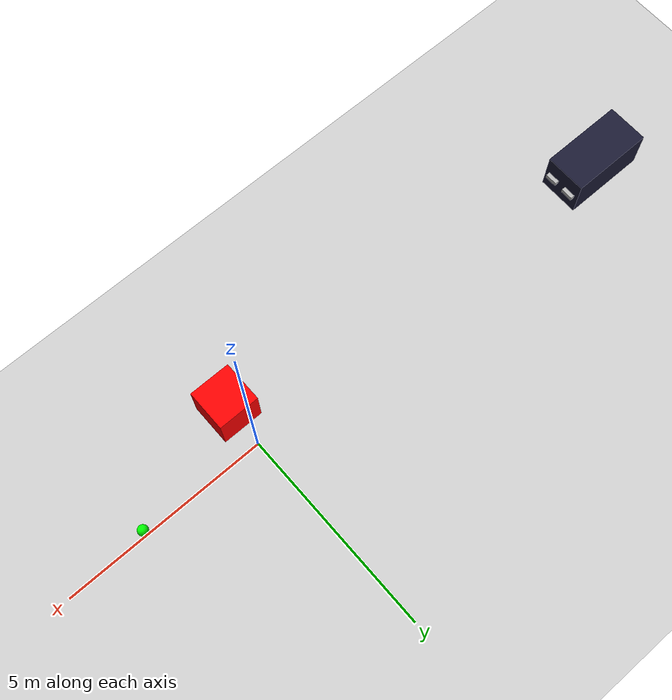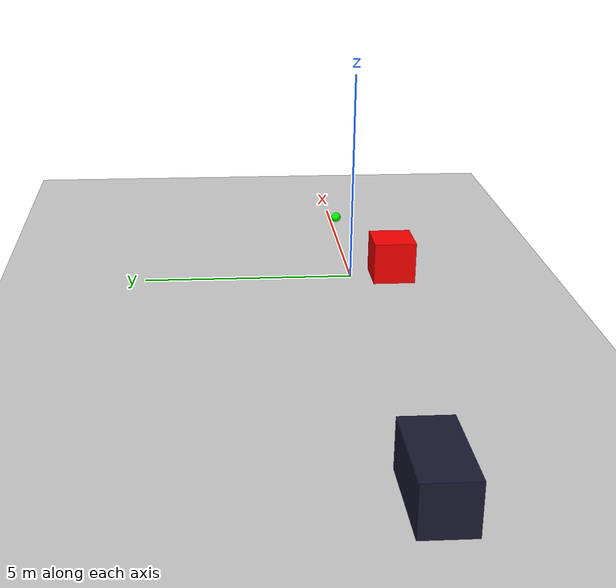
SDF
<sdf version="1.7">
 <world name="camera_world">
  <physics name="1ms" type="ignored">
   <max_step_size>0.001</max_step_size>
   <real_time_factor>1.0</real_time_factor>
  </physics>
  <plugin filename="gz-sim-physics-system" name="gz::sim::systems::Physics"/>
  <plugin filename="gz-sim-sensors-system" name="gz::sim::systems::Sensors">
   <render_engine>ogre2</render_engine>
  </plugin>
  <plugin filename="gz-sim-user-commands-system" name="gz::sim::systems::UserCommands"/>
  <plugin filename="gz-sim-scene-broadcaster-system" name="gz::sim::systems::SceneBroadcaster"/>
  <scene><ambient>1.0 1.0 1.0</ambient><background>0.8 0.8 0.8</background><grid>true</grid></scene>
  <light type="directional" name="sun">
   <pose>0 0 10 0 0 0</pose>
   <diffuse>0.8 0.8 0.8 1</diffuse>
   <specular>0.8 0.8 0.8 1</specular>
   <attenuation>
    <range>1000</range>
    <constant>0.9</constant>
    <linear>0.01</linear>
    <quadratic>0.001</quadratic>
   </attenuation>
   <direction>-0.5 0.1 -0.9</direction>
  </light>
  <model name="ground_plane">
   <static>true</static>
   <link name="link">
    <collision name="collision">
     <geometry><plane><normal>0 0 1</normal><size>100 100</size></plane></geometry>
    </collision>
    <visual name="visual">
     <geometry><plane><normal>0 0 1</normal><size>100 100</size></plane></geometry>
     <material>
      <ambient>0.8 0.8 0.8 1</ambient>
      <diffuse>0.8 0.8 0.8 1</diffuse>
      <specular>0.8 0.8 0.8 1</specular>
     </material>
    </visual>
   </link>
  </model>
  <model name="cube">
   <pose>0 -1 0.5 0 0 0</pose>
   <link name="box_link">
    <inertial>
     <inertia><ixx>1</ixx><ixy>0</ixy><ixz>0</ixz><iyy>1</iyy><iyz>0</iyz><izz>1</izz></inertia>
     <mass>1.0</mass>
    </inertial>
    <collision name="box_collision"><geometry><box><size>1 1 1</size></box></geometry></collision>
    <visual name="box_visual">
     <geometry><box><size>1 1 1</size></box></geometry>
     <material><ambient>1 0 0 1</ambient><diffuse>1 0 0 1</diffuse><specular>1 0 0 1</specular></material>
    </visual>
   </link>
  </model>
  <model name="sphere">
   <static>true</static>
   <pose>3 0 0.5 0 0 0</pose>
   <link name="sphere_link">
    <collision name="sphere_collision"><geometry><sphere><radius>0.125</radius></sphere></geometry></collision>
    <visual name="sphere_visual">
     <geometry><sphere><radius>0.125</radius></sphere></geometry>
     <material><ambient>0 1 0 1</ambient><diffuse>0 1 0 1</diffuse><specular>0 1 0 1</specular></material>
     <cast_shadows>false</cast_shadows>
    </visual>
   </link>
  </model>
  <include><uri>box_test/model.sdf</uri><pose>-10 0 0.7 0 0 0</pose></include>
 </world>
</sdf>

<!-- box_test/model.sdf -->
<sdf version='1.7'>
  <model name='box'>
<pose>0 0 0 0 0 0</pose>
    <gravity>false</gravity>
    <link name="link">
      <inertial>
        <mass>1.0</mass>
        <inertia>
          <ixx>0.083</ixx>
          <ixy>0.0</ixy>
          <ixz>0.0</ixz>
          <iyy>0.083</iyy>
          <iyz>0.0</iyz>
          <izz>0.083</izz>
        </inertia>
      </inertial>
      <collision name="collision">
        <geometry>
          <box>
            <size>2 1 1</size>
          </box>
        </geometry>
      </collision>
      <visual name="visual">
      <material> <!-- Wheel material -->
          <ambient>0.1 0.1 0.1 1</ambient>
          <diffuse>0.1 0.1 0.2 1</diffuse>
          <specular>0 0 0 0</specular>
          <emissive>1 0 0 1</emissive>
        </material>
        <geometry>
          <box>
            <size>2 1 1</size>
          </box>
        </geometry>
      </visual>

    </link>
    <link name="camera_right_link">
        <gravity>false</gravity>
                <collision name="collision">
          <geometry>
            <box>
              <size>0.1 0.3 0.1</size>
            </box>
          </geometry>
        </collision>
        <visual name="visual">
          <geometry>
            <box>
              <size>0.1 0.3 0.1</size>
            </box>
          </geometry>
        </visual>
        <pose >1.05 -0.25 0 0 0 0</pose>
        <sensor name="camera" type="camera">
          <camera>
            <horizontal_fov>1.047</horizontal_fov>
            <image>
              <width>1920</width>
              <height>1080</height>
            </image>
            <clip>
              <near>0.1</near>
              <far>100</far>
            </clip>
          </camera>
          <always_on>1</always_on>
          <update_rate>30</update_rate>
          <visualize>true</visualize>
          <topic>/camera/raw_right</topic>
        </sensor>
      </link>
    <link name="camera_left_link">

        <gravity>false</gravity>
            <collision name="collision">
          <geometry>
            <box>
              <size>0.1 0.3 0.1</size>
            </box>
          </geometry>
        </collision>
        <visual name="visual">
          <geometry>
            <box>
              <size>0.1 0.3 0.1</size>
            </box>
          </geometry>
        </visual>
        <pose >1.05 0.25 0 0 0 0</pose>
        <sensor name="camera" type="camera">
          <camera>
            <horizontal_fov>1.047</horizontal_fov>
            <image>
              <width>1920</width>
              <height>1080</height>
            </image>
            <clip>
              <near>0.1</near>
              <far>100</far>
            </clip>
          </camera>
          <always_on>1</always_on>
          <update_rate>30</update_rate>
          <visualize>true</visualize>
          <topic>/camera/raw_left</topic>
        </sensor>
    </link>
    <joint name="camera_glue_right" type="fixed">
      <parent>link</parent>
      <child>camera_right_link</child>
    </joint>
    <joint name="camera_glue_left" type="fixed">
      <parent>link</parent>
      <child>camera_left_link</child>
    </joint>

<plugin filename="movePlugin" name="move_Plugin::movePlugin"></plugin>

        </model>

</sdf>
